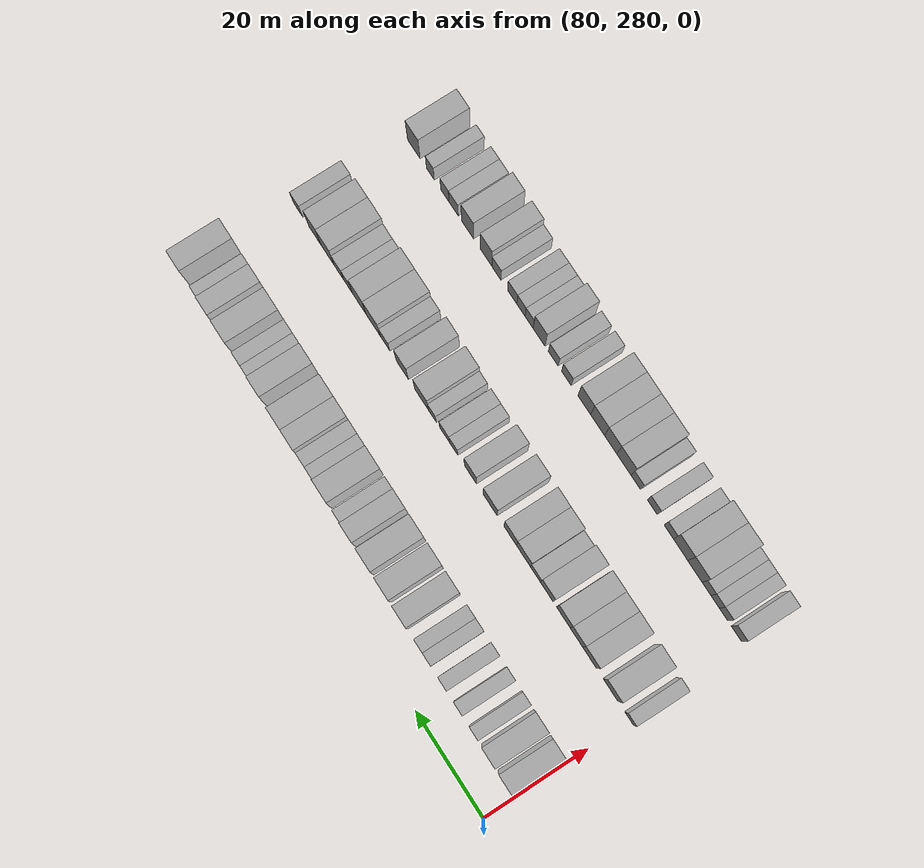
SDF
<sdf version="1.6">
 <world name="default">
  <model name="building_721">
   <static>1</static>
   <pose>91.0000 282.9249 0 0.000000 0.000000 0.000000</pose>
   <link name="link">
    <pose>0 0 4.50 0 0 0</pose>
    <collision name="collision"><geometry><box><size>10.0000 4.2821 9.0000</size></box></geometry></collision>
    <visual name="visual">
     <cast_shadows>0</cast_shadows>
     <geometry><box><size>10.0000 4.2821 9.0000</size></box></geometry>
     <material>
      <script>
       <uri>model://HANNAS_wall/materials/scripts</uri>
       <uri>model://HANNAS_wall/materials/textures</uri>
       <name>vrc/HANNAS_wall</name>
      </script>
     </material>
    </visual>
   </link>
  </model>
  <model name="building_722">
   <static>1</static>
   <pose>91.0000 287.9911 0 0.000000 0.000000 0.000000</pose>
   <link name="link">
    <pose>0 0 4.50 0 0 0</pose>
    <collision name="collision"><geometry><box><size>10.0000 3.8503 9.0000</size></box></geometry></collision>
    <visual name="visual">
     <cast_shadows>0</cast_shadows>
     <geometry><box><size>10.0000 3.8503 9.0000</size></box></geometry>
     <material>
      <script>
       <uri>model://HANNAS_wall/materials/scripts</uri>
       <uri>model://HANNAS_wall/materials/textures</uri>
       <name>vrc/HANNAS_wall</name>
      </script>
     </material>
    </visual>
   </link>
  </model>
  <model name="building_723">
   <static>1</static>
   <pose>91.0000 292.1779 0 0.000000 0.000000 0.000000</pose>
   <link name="link">
    <pose>0 0 3.00 0 0 0</pose>
    <collision name="collision"><geometry><box><size>10.0000 2.5231 6.0000</size></box></geometry></collision>
    <visual name="visual">
     <cast_shadows>0</cast_shadows>
     <geometry><box><size>10.0000 2.5231 6.0000</size></box></geometry>
     <material>
      <script>
       <uri>model://HANNAS_wall/materials/scripts</uri>
       <uri>model://HANNAS_wall/materials/textures</uri>
       <name>vrc/HANNAS_wall</name>
      </script>
     </material>
    </visual>
   </link>
  </model>
  <model name="building_724">
   <static>1</static>
   <pose>91.0000 296.7178 0 0.000000 0.000000 0.000000</pose>
   <link name="link">
    <pose>0 0 3.00 0 0 0</pose>
    <collision name="collision"><geometry><box><size>10.0000 2.5567 6.0000</size></box></geometry></collision>
    <visual name="visual">
     <cast_shadows>0</cast_shadows>
     <geometry><box><size>10.0000 2.5567 6.0000</size></box></geometry>
     <material>
      <script>
       <uri>model://HANNAS_wall/materials/scripts</uri>
       <uri>model://HANNAS_wall/materials/textures</uri>
       <name>vrc/HANNAS_wall</name>
      </script>
     </material>
    </visual>
   </link>
  </model>
  <model name="building_725">
   <static>1</static>
   <pose>91.0000 301.2872 0 0.000000 0.000000 0.000000</pose>
   <link name="link">
    <pose>0 0 3.00 0 0 0</pose>
    <collision name="collision"><geometry><box><size>10.0000 2.5821 6.0000</size></box></geometry></collision>
    <visual name="visual">
     <cast_shadows>0</cast_shadows>
     <geometry><box><size>10.0000 2.5821 6.0000</size></box></geometry>
     <material>
      <script>
       <uri>model://HANNAS_wall/materials/scripts</uri>
       <uri>model://HANNAS_wall/materials/textures</uri>
       <name>vrc/HANNAS_wall</name>
      </script>
     </material>
    </visual>
   </link>
  </model>
  <model name="building_726">
   <static>1</static>
   <pose>91.0000 305.8142 0 0.000000 0.000000 0.000000</pose>
   <link name="link">
    <pose>0 0 3.00 0 0 0</pose>
    <collision name="collision"><geometry><box><size>10.0000 2.4719 6.0000</size></box></geometry></collision>
    <visual name="visual">
     <cast_shadows>0</cast_shadows>
     <geometry><box><size>10.0000 2.4719 6.0000</size></box></geometry>
     <material>
      <script>
       <uri>model://HANNAS_wall/materials/scripts</uri>
       <uri>model://HANNAS_wall/materials/textures</uri>
       <name>vrc/HANNAS_wall</name>
      </script>
     </material>
    </visual>
   </link>
  </model>
  <model name="building_727">
   <static>1</static>
   <pose>91.0000 308.3226 0 0.000000 0.000000 0.000000</pose>
   <link name="link">
    <pose>0 0 3.00 0 0 0</pose>
    <collision name="collision"><geometry><box><size>10.0000 2.5449 6.0000</size></box></geometry></collision>
    <visual name="visual">
     <cast_shadows>0</cast_shadows>
     <geometry><box><size>10.0000 2.5449 6.0000</size></box></geometry>
     <material>
      <script>
       <uri>model://HANNAS_wall/materials/scripts</uri>
       <uri>model://HANNAS_wall/materials/textures</uri>
       <name>vrc/HANNAS_wall</name>
      </script>
     </material>
    </visual>
   </link>
  </model>
  <model name="building_728">
   <static>1</static>
   <pose>91.0000 313.6420 0 0.000000 0.000000 0.000000</pose>
   <link name="link">
    <pose>0 0 4.50 0 0 0</pose>
    <collision name="collision"><geometry><box><size>10.0000 4.0939 9.0000</size></box></geometry></collision>
    <visual name="visual">
     <cast_shadows>0</cast_shadows>
     <geometry><box><size>10.0000 4.0939 9.0000</size></box></geometry>
     <material>
      <script>
       <uri>model://HANNAS_wall/materials/scripts</uri>
       <uri>model://HANNAS_wall/materials/textures</uri>
       <name>vrc/HANNAS_wall</name>
      </script>
     </material>
    </visual>
   </link>
  </model>
  <model name="building_729">
   <static>1</static>
   <pose>91.0000 318.8172 0 0.000000 0.000000 0.000000</pose>
   <link name="link">
    <pose>0 0 4.50 0 0 0</pose>
    <collision name="collision"><geometry><box><size>10.0000 4.2566 9.0000</size></box></geometry></collision>
    <visual name="visual">
     <cast_shadows>0</cast_shadows>
     <geometry><box><size>10.0000 4.2566 9.0000</size></box></geometry>
     <material>
      <script>
       <uri>model://HANNAS_wall/materials/scripts</uri>
       <uri>model://HANNAS_wall/materials/textures</uri>
       <name>vrc/HANNAS_wall</name>
      </script>
     </material>
    </visual>
   </link>
  </model>
  <model name="building_730">
   <static>1</static>
   <pose>91.0000 324.1580 0 0.000000 0.000000 0.000000</pose>
   <link name="link">
    <pose>0 0 4.50 0 0 0</pose>
    <collision name="collision"><geometry><box><size>10.0000 4.4248 9.0000</size></box></geometry></collision>
    <visual name="visual">
     <cast_shadows>0</cast_shadows>
     <geometry><box><size>10.0000 4.4248 9.0000</size></box></geometry>
     <material>
      <script>
       <uri>model://HANNAS_wall/materials/scripts</uri>
       <uri>model://HANNAS_wall/materials/textures</uri>
       <name>vrc/HANNAS_wall</name>
      </script>
     </material>
    </visual>
   </link>
  </model>
  <model name="building_731">
   <static>1</static>
   <pose>91.0000 329.2375 0 0.000000 0.000000 0.000000</pose>
   <link name="link">
    <pose>0 0 4.50 0 0 0</pose>
    <collision name="collision"><geometry><box><size>10.0000 3.7342 9.0000</size></box></geometry></collision>
    <visual name="visual">
     <cast_shadows>0</cast_shadows>
     <geometry><box><size>10.0000 3.7342 9.0000</size></box></geometry>
     <material>
      <script>
       <uri>model://HANNAS_wall/materials/scripts</uri>
       <uri>model://HANNAS_wall/materials/textures</uri>
       <name>vrc/HANNAS_wall</name>
      </script>
     </material>
    </visual>
   </link>
  </model>
  <model name="building_732">
   <static>1</static>
   <pose>91.0000 332.4694 0 0.000000 0.000000 0.000000</pose>
   <link name="link">
    <pose>0 0 3.00 0 0 0</pose>
    <collision name="collision"><geometry><box><size>10.0000 2.7295 6.0000</size></box></geometry></collision>
    <visual name="visual">
     <cast_shadows>0</cast_shadows>
     <geometry><box><size>10.0000 2.7295 6.0000</size></box></geometry>
     <material>
      <script>
       <uri>model://HANNAS_wall/materials/scripts</uri>
       <uri>model://HANNAS_wall/materials/textures</uri>
       <name>vrc/HANNAS_wall</name>
      </script>
     </material>
    </visual>
   </link>
  </model>
  <model name="building_733">
   <static>1</static>
   <pose>91.0000 337.0437 0 0.000000 0.000000 0.000000</pose>
   <link name="link">
    <pose>0 0 4.50 0 0 0</pose>
    <collision name="collision"><geometry><box><size>10.0000 4.4191 9.0000</size></box></geometry></collision>
    <visual name="visual">
     <cast_shadows>0</cast_shadows>
     <geometry><box><size>10.0000 4.4191 9.0000</size></box></geometry>
     <material>
      <script>
       <uri>model://HANNAS_wall/materials/scripts</uri>
       <uri>model://HANNAS_wall/materials/textures</uri>
       <name>vrc/HANNAS_wall</name>
      </script>
     </material>
    </visual>
   </link>
  </model>
  <model name="building_734">
   <static>1</static>
   <pose>91.0000 340.6463 0 0.000000 0.000000 0.000000</pose>
   <link name="link">
    <pose>0 0 3.00 0 0 0</pose>
    <collision name="collision"><geometry><box><size>10.0000 2.7863 6.0000</size></box></geometry></collision>
    <visual name="visual">
     <cast_shadows>0</cast_shadows>
     <geometry><box><size>10.0000 2.7863 6.0000</size></box></geometry>
     <material>
      <script>
       <uri>model://HANNAS_wall/materials/scripts</uri>
       <uri>model://HANNAS_wall/materials/textures</uri>
       <name>vrc/HANNAS_wall</name>
      </script>
     </material>
    </visual>
   </link>
  </model>
  <model name="building_735">
   <static>1</static>
   <pose>91.0000 343.3948 0 0.000000 0.000000 0.000000</pose>
   <link name="link">
    <pose>0 0 3.00 0 0 0</pose>
    <collision name="collision"><geometry><box><size>10.0000 2.7107 6.0000</size></box></geometry></collision>
    <visual name="visual">
     <cast_shadows>0</cast_shadows>
     <geometry><box><size>10.0000 2.7107 6.0000</size></box></geometry>
     <material>
      <script>
       <uri>model://HANNAS_wall/materials/scripts</uri>
       <uri>model://HANNAS_wall/materials/textures</uri>
       <name>vrc/HANNAS_wall</name>
      </script>
     </material>
    </visual>
   </link>
  </model>
  <model name="building_736">
   <static>1</static>
   <pose>91.0000 346.7022 0 0.000000 0.000000 0.000000</pose>
   <link name="link">
    <pose>0 0 4.50 0 0 0</pose>
    <collision name="collision"><geometry><box><size>10.0000 3.9039 9.0000</size></box></geometry></collision>
    <visual name="visual">
     <cast_shadows>0</cast_shadows>
     <geometry><box><size>10.0000 3.9039 9.0000</size></box></geometry>
     <material>
      <script>
       <uri>model://HANNAS_wall/materials/scripts</uri>
       <uri>model://HANNAS_wall/materials/textures</uri>
       <name>vrc/HANNAS_wall</name>
      </script>
     </material>
    </visual>
   </link>
  </model>
  <model name="building_737">
   <static>1</static>
   <pose>91.0000 350.7959 0 0.000000 0.000000 0.000000</pose>
   <link name="link">
    <pose>0 0 4.50 0 0 0</pose>
    <collision name="collision"><geometry><box><size>10.0000 4.2835 9.0000</size></box></geometry></collision>
    <visual name="visual">
     <cast_shadows>0</cast_shadows>
     <geometry><box><size>10.0000 4.2835 9.0000</size></box></geometry>
     <material>
      <script>
       <uri>model://HANNAS_wall/materials/scripts</uri>
       <uri>model://HANNAS_wall/materials/textures</uri>
       <name>vrc/HANNAS_wall</name>
      </script>
     </material>
    </visual>
   </link>
  </model>
  <model name="building_738">
   <static>1</static>
   <pose>91.0000 356.9133 0 0.000000 0.000000 0.000000</pose>
   <link name="link">
    <pose>0 0 4.50 0 0 0</pose>
    <collision name="collision"><geometry><box><size>10.0000 3.9514 9.0000</size></box></geometry></collision>
    <visual name="visual">
     <cast_shadows>0</cast_shadows>
     <geometry><box><size>10.0000 3.9514 9.0000</size></box></geometry>
     <material>
      <script>
       <uri>model://HANNAS_wall/materials/scripts</uri>
       <uri>model://HANNAS_wall/materials/textures</uri>
       <name>vrc/HANNAS_wall</name>
      </script>
     </material>
    </visual>
   </link>
  </model>
  <model name="building_739">
   <static>1</static>
   <pose>91.0000 360.2728 0 0.000000 0.000000 0.000000</pose>
   <link name="link">
    <pose>0 0 3.00 0 0 0</pose>
    <collision name="collision"><geometry><box><size>10.0000 2.7677 6.0000</size></box></geometry></collision>
    <visual name="visual">
     <cast_shadows>0</cast_shadows>
     <geometry><box><size>10.0000 2.7677 6.0000</size></box></geometry>
     <material>
      <script>
       <uri>model://HANNAS_wall/materials/scripts</uri>
       <uri>model://HANNAS_wall/materials/textures</uri>
       <name>vrc/HANNAS_wall</name>
      </script>
     </material>
    </visual>
   </link>
  </model>
  <model name="building_740">
   <static>1</static>
   <pose>91.0000 362.9914 0 0.000000 0.000000 0.000000</pose>
   <link name="link">
    <pose>0 0 3.00 0 0 0</pose>
    <collision name="collision"><geometry><box><size>10.0000 2.6695 6.0000</size></box></geometry></collision>
    <visual name="visual">
     <cast_shadows>0</cast_shadows>
     <geometry><box><size>10.0000 2.6695 6.0000</size></box></geometry>
     <material>
      <script>
       <uri>model://HANNAS_wall/materials/scripts</uri>
       <uri>model://HANNAS_wall/materials/textures</uri>
       <name>vrc/HANNAS_wall</name>
      </script>
     </material>
    </visual>
   </link>
  </model>
  <model name="building_741">
   <static>1</static>
   <pose>91.0000 367.5371 0 0.000000 0.000000 0.000000</pose>
   <link name="link">
    <pose>0 0 4.50 0 0 0</pose>
    <collision name="collision"><geometry><box><size>10.0000 4.4219 9.0000</size></box></geometry></collision>
    <visual name="visual">
     <cast_shadows>0</cast_shadows>
     <geometry><box><size>10.0000 4.4219 9.0000</size></box></geometry>
     <material>
      <script>
       <uri>model://HANNAS_wall/materials/scripts</uri>
       <uri>model://HANNAS_wall/materials/textures</uri>
       <name>vrc/HANNAS_wall</name>
      </script>
     </material>
    </visual>
   </link>
  </model>
  <model name="building_742">
   <static>1</static>
   <pose>91.0000 372.5519 0 0.000000 0.000000 0.000000</pose>
   <link name="link">
    <pose>0 0 4.50 0 0 0</pose>
    <collision name="collision"><geometry><box><size>10.0000 3.6077 9.0000</size></box></geometry></collision>
    <visual name="visual">
     <cast_shadows>0</cast_shadows>
     <geometry><box><size>10.0000 3.6077 9.0000</size></box></geometry>
     <material>
      <script>
       <uri>model://HANNAS_wall/materials/scripts</uri>
       <uri>model://HANNAS_wall/materials/textures</uri>
       <name>vrc/HANNAS_wall</name>
      </script>
     </material>
    </visual>
   </link>
  </model>
  <model name="building_743">
   <static>1</static>
   <pose>91.0000 375.8541 0 0.000000 0.000000 0.000000</pose>
   <link name="link">
    <pose>0 0 3.00 0 0 0</pose>
    <collision name="collision"><geometry><box><size>10.0000 2.9969 6.0000</size></box></geometry></collision>
    <visual name="visual">
     <cast_shadows>0</cast_shadows>
     <geometry><box><size>10.0000 2.9969 6.0000</size></box></geometry>
     <material>
      <script>
       <uri>model://HANNAS_wall/materials/scripts</uri>
       <uri>model://HANNAS_wall/materials/textures</uri>
       <name>vrc/HANNAS_wall</name>
      </script>
     </material>
    </visual>
   </link>
  </model>
  <model name="building_744">
   <static>1</static>
   <pose>91.0000 381.3688 0 0.000000 0.000000 0.000000</pose>
   <link name="link">
    <pose>0 0 4.50 0 0 0</pose>
    <collision name="collision"><geometry><box><size>10.0000 4.0326 9.0000</size></box></geometry></collision>
    <visual name="visual">
     <cast_shadows>0</cast_shadows>
     <geometry><box><size>10.0000 4.0326 9.0000</size></box></geometry>
     <material>
      <script>
       <uri>model://HANNAS_wall/materials/scripts</uri>
       <uri>model://HANNAS_wall/materials/textures</uri>
       <name>vrc/HANNAS_wall</name>
      </script>
     </material>
    </visual>
   </link>
  </model>
  <model name="building_906">
   <static>1</static>
   <pose>113.0000 280.4927 0 0.000000 0.000000 0.000000</pose>
   <link name="link">
    <pose>0 0 3.00 0 0 0</pose>
    <collision name="collision"><geometry><box><size>10.0000 2.4634 6.0000</size></box></geometry></collision>
    <visual name="visual">
     <cast_shadows>0</cast_shadows>
     <geometry><box><size>10.0000 2.4634 6.0000</size></box></geometry>
     <material>
      <script>
       <uri>model://HANNAS_wall/materials/scripts</uri>
       <uri>model://HANNAS_wall/materials/textures</uri>
       <name>vrc/HANNAS_wall</name>
      </script>
     </material>
    </visual>
   </link>
  </model>
  <model name="building_907">
   <static>1</static>
   <pose>113.0000 285.8467 0 0.000000 0.000000 0.000000</pose>
   <link name="link">
    <pose>0 0 4.50 0 0 0</pose>
    <collision name="collision"><geometry><box><size>10.0000 4.2445 9.0000</size></box></geometry></collision>
    <visual name="visual">
     <cast_shadows>0</cast_shadows>
     <geometry><box><size>10.0000 4.2445 9.0000</size></box></geometry>
     <material>
      <script>
       <uri>model://HANNAS_wall/materials/scripts</uri>
       <uri>model://HANNAS_wall/materials/textures</uri>
       <name>vrc/HANNAS_wall</name>
      </script>
     </material>
    </visual>
   </link>
  </model>
  <model name="building_908">
   <static>1</static>
   <pose>113.0000 291.9885 0 0.000000 0.000000 0.000000</pose>
   <link name="link">
    <pose>0 0 4.50 0 0 0</pose>
    <collision name="collision"><geometry><box><size>10.0000 4.0390 9.0000</size></box></geometry></collision>
    <visual name="visual">
     <cast_shadows>0</cast_shadows>
     <geometry><box><size>10.0000 4.0390 9.0000</size></box></geometry>
     <material>
      <script>
       <uri>model://HANNAS_wall/materials/scripts</uri>
       <uri>model://HANNAS_wall/materials/textures</uri>
       <name>vrc/HANNAS_wall</name>
      </script>
     </material>
    </visual>
   </link>
  </model>
  <model name="building_909">
   <static>1</static>
   <pose>113.0000 295.8338 0 0.000000 0.000000 0.000000</pose>
   <link name="link">
    <pose>0 0 4.50 0 0 0</pose>
    <collision name="collision"><geometry><box><size>10.0000 3.6516 9.0000</size></box></geometry></collision>
    <visual name="visual">
     <cast_shadows>0</cast_shadows>
     <geometry><box><size>10.0000 3.6516 9.0000</size></box></geometry>
     <material>
      <script>
       <uri>model://HANNAS_wall/materials/scripts</uri>
       <uri>model://HANNAS_wall/materials/textures</uri>
       <name>vrc/HANNAS_wall</name>
      </script>
     </material>
    </visual>
   </link>
  </model>
  <model name="building_910">
   <static>1</static>
   <pose>113.0000 299.6271 0 0.000000 0.000000 0.000000</pose>
   <link name="link">
    <pose>0 0 4.50 0 0 0</pose>
    <collision name="collision"><geometry><box><size>10.0000 3.9351 9.0000</size></box></geometry></collision>
    <visual name="visual">
     <cast_shadows>0</cast_shadows>
     <geometry><box><size>10.0000 3.9351 9.0000</size></box></geometry>
     <material>
      <script>
       <uri>model://HANNAS_wall/materials/scripts</uri>
       <uri>model://HANNAS_wall/materials/textures</uri>
       <name>vrc/HANNAS_wall</name>
      </script>
     </material>
    </visual>
   </link>
  </model>
  <model name="building_911">
   <static>1</static>
   <pose>113.0000 304.4656 0 0.000000 0.000000 0.000000</pose>
   <link name="link">
    <pose>0 0 4.50 0 0 0</pose>
    <collision name="collision"><geometry><box><size>10.0000 3.7419 9.0000</size></box></geometry></collision>
    <visual name="visual">
     <cast_shadows>0</cast_shadows>
     <geometry><box><size>10.0000 3.7419 9.0000</size></box></geometry>
     <material>
      <script>
       <uri>model://HANNAS_wall/materials/scripts</uri>
       <uri>model://HANNAS_wall/materials/textures</uri>
       <name>vrc/HANNAS_wall</name>
      </script>
     </material>
    </visual>
   </link>
  </model>
  <model name="building_912">
   <static>1</static>
   <pose>113.0000 307.8141 0 0.000000 0.000000 0.000000</pose>
   <link name="link">
    <pose>0 0 3.00 0 0 0</pose>
    <collision name="collision"><geometry><box><size>10.0000 2.9552 6.0000</size></box></geometry></collision>
    <visual name="visual">
     <cast_shadows>0</cast_shadows>
     <geometry><box><size>10.0000 2.9552 6.0000</size></box></geometry>
     <material>
      <script>
       <uri>model://HANNAS_wall/materials/scripts</uri>
       <uri>model://HANNAS_wall/materials/textures</uri>
       <name>vrc/HANNAS_wall</name>
      </script>
     </material>
    </visual>
   </link>
  </model>
  <model name="building_913">
   <static>1</static>
   <pose>113.0000 311.3528 0 0.000000 0.000000 0.000000</pose>
   <link name="link">
    <pose>0 0 4.50 0 0 0</pose>
    <collision name="collision"><geometry><box><size>10.0000 4.1222 9.0000</size></box></geometry></collision>
    <visual name="visual">
     <cast_shadows>0</cast_shadows>
     <geometry><box><size>10.0000 4.1222 9.0000</size></box></geometry>
     <material>
      <script>
       <uri>model://HANNAS_wall/materials/scripts</uri>
       <uri>model://HANNAS_wall/materials/textures</uri>
       <name>vrc/HANNAS_wall</name>
      </script>
     </material>
    </visual>
   </link>
  </model>
  <model name="building_914">
   <static>1</static>
   <pose>113.0000 315.2911 0 0.000000 0.000000 0.000000</pose>
   <link name="link">
    <pose>0 0 4.50 0 0 0</pose>
    <collision name="collision"><geometry><box><size>10.0000 3.7542 9.0000</size></box></geometry></collision>
    <visual name="visual">
     <cast_shadows>0</cast_shadows>
     <geometry><box><size>10.0000 3.7542 9.0000</size></box></geometry>
     <material>
      <script>
       <uri>model://HANNAS_wall/materials/scripts</uri>
       <uri>model://HANNAS_wall/materials/textures</uri>
       <name>vrc/HANNAS_wall</name>
      </script>
     </material>
    </visual>
   </link>
  </model>
  <model name="building_915">
   <static>1</static>
   <pose>113.0000 321.2756 0 0.000000 0.000000 0.000000</pose>
   <link name="link">
    <pose>0 0 4.50 0 0 0</pose>
    <collision name="collision"><geometry><box><size>10.0000 4.2148 9.0000</size></box></geometry></collision>
    <visual name="visual">
     <cast_shadows>0</cast_shadows>
     <geometry><box><size>10.0000 4.2148 9.0000</size></box></geometry>
     <material>
      <script>
       <uri>model://HANNAS_wall/materials/scripts</uri>
       <uri>model://HANNAS_wall/materials/textures</uri>
       <name>vrc/HANNAS_wall</name>
      </script>
     </material>
    </visual>
   </link>
  </model>
  <model name="building_916">
   <static>1</static>
   <pose>113.0000 327.1985 0 0.000000 0.000000 0.000000</pose>
   <link name="link">
    <pose>0 0 4.50 0 0 0</pose>
    <collision name="collision"><geometry><box><size>10.0000 3.6310 9.0000</size></box></geometry></collision>
    <visual name="visual">
     <cast_shadows>0</cast_shadows>
     <geometry><box><size>10.0000 3.6310 9.0000</size></box></geometry>
     <material>
      <script>
       <uri>model://HANNAS_wall/materials/scripts</uri>
       <uri>model://HANNAS_wall/materials/textures</uri>
       <name>vrc/HANNAS_wall</name>
      </script>
     </material>
    </visual>
   </link>
  </model>
  <model name="building_917">
   <static>1</static>
   <pose>113.0000 332.2927 0 0.000000 0.000000 0.000000</pose>
   <link name="link">
    <pose>0 0 3.00 0 0 0</pose>
    <collision name="collision"><geometry><box><size>10.0000 2.5574 6.0000</size></box></geometry></collision>
    <visual name="visual">
     <cast_shadows>0</cast_shadows>
     <geometry><box><size>10.0000 2.5574 6.0000</size></box></geometry>
     <material>
      <script>
       <uri>model://HANNAS_wall/materials/scripts</uri>
       <uri>model://HANNAS_wall/materials/textures</uri>
       <name>vrc/HANNAS_wall</name>
      </script>
     </material>
    </visual>
   </link>
  </model>
  <model name="building_918">
   <static>1</static>
   <pose>113.0000 335.0383 0 0.000000 0.000000 0.000000</pose>
   <link name="link">
    <pose>0 0 3.00 0 0 0</pose>
    <collision name="collision"><geometry><box><size>10.0000 2.9337 6.0000</size></box></geometry></collision>
    <visual name="visual">
     <cast_shadows>0</cast_shadows>
     <geometry><box><size>10.0000 2.9337 6.0000</size></box></geometry>
     <material>
      <script>
       <uri>model://HANNAS_wall/materials/scripts</uri>
       <uri>model://HANNAS_wall/materials/textures</uri>
       <name>vrc/HANNAS_wall</name>
      </script>
     </material>
    </visual>
   </link>
  </model>
  <model name="building_919">
   <static>1</static>
   <pose>113.0000 338.7102 0 0.000000 0.000000 0.000000</pose>
   <link name="link">
    <pose>0 0 3.00 0 0 0</pose>
    <collision name="collision"><geometry><box><size>10.0000 2.4101 6.0000</size></box></geometry></collision>
    <visual name="visual">
     <cast_shadows>0</cast_shadows>
     <geometry><box><size>10.0000 2.4101 6.0000</size></box></geometry>
     <material>
      <script>
       <uri>model://HANNAS_wall/materials/scripts</uri>
       <uri>model://HANNAS_wall/materials/textures</uri>
       <name>vrc/HANNAS_wall</name>
      </script>
     </material>
    </visual>
   </link>
  </model>
  <model name="building_920">
   <static>1</static>
   <pose>113.0000 341.9843 0 0.000000 0.000000 0.000000</pose>
   <link name="link">
    <pose>0 0 4.50 0 0 0</pose>
    <collision name="collision"><geometry><box><size>10.0000 4.1382 9.0000</size></box></geometry></collision>
    <visual name="visual">
     <cast_shadows>0</cast_shadows>
     <geometry><box><size>10.0000 4.1382 9.0000</size></box></geometry>
     <material>
      <script>
       <uri>model://HANNAS_wall/materials/scripts</uri>
       <uri>model://HANNAS_wall/materials/textures</uri>
       <name>vrc/HANNAS_wall</name>
      </script>
     </material>
    </visual>
   </link>
  </model>
  <model name="building_921">
   <static>1</static>
   <pose>113.0000 347.8996 0 0.000000 0.000000 0.000000</pose>
   <link name="link">
    <pose>0 0 4.50 0 0 0</pose>
    <collision name="collision"><geometry><box><size>10.0000 3.6924 9.0000</size></box></geometry></collision>
    <visual name="visual">
     <cast_shadows>0</cast_shadows>
     <geometry><box><size>10.0000 3.6924 9.0000</size></box></geometry>
     <material>
      <script>
       <uri>model://HANNAS_wall/materials/scripts</uri>
       <uri>model://HANNAS_wall/materials/textures</uri>
       <name>vrc/HANNAS_wall</name>
      </script>
     </material>
    </visual>
   </link>
  </model>
  <model name="building_922">
   <static>1</static>
   <pose>113.0000 353.1746 0 0.000000 0.000000 0.000000</pose>
   <link name="link">
    <pose>0 0 3.00 0 0 0</pose>
    <collision name="collision"><geometry><box><size>10.0000 2.8577 6.0000</size></box></geometry></collision>
    <visual name="visual">
     <cast_shadows>0</cast_shadows>
     <geometry><box><size>10.0000 2.8577 6.0000</size></box></geometry>
     <material>
      <script>
       <uri>model://HANNAS_wall/materials/scripts</uri>
       <uri>model://HANNAS_wall/materials/textures</uri>
       <name>vrc/HANNAS_wall</name>
      </script>
     </material>
    </visual>
   </link>
  </model>
  <model name="building_923">
   <static>1</static>
   <pose>113.0000 356.8511 0 0.000000 0.000000 0.000000</pose>
   <link name="link">
    <pose>0 0 4.50 0 0 0</pose>
    <collision name="collision"><geometry><box><size>10.0000 4.4952 9.0000</size></box></geometry></collision>
    <visual name="visual">
     <cast_shadows>0</cast_shadows>
     <geometry><box><size>10.0000 4.4952 9.0000</size></box></geometry>
     <material>
      <script>
       <uri>model://HANNAS_wall/materials/scripts</uri>
       <uri>model://HANNAS_wall/materials/textures</uri>
       <name>vrc/HANNAS_wall</name>
      </script>
     </material>
    </visual>
   </link>
  </model>
  <model name="building_924">
   <static>1</static>
   <pose>113.0000 361.2225 0 0.000000 0.000000 0.000000</pose>
   <link name="link">
    <pose>0 0 4.50 0 0 0</pose>
    <collision name="collision"><geometry><box><size>10.0000 4.2476 9.0000</size></box></geometry></collision>
    <visual name="visual">
     <cast_shadows>0</cast_shadows>
     <geometry><box><size>10.0000 4.2476 9.0000</size></box></geometry>
     <material>
      <script>
       <uri>model://HANNAS_wall/materials/scripts</uri>
       <uri>model://HANNAS_wall/materials/textures</uri>
       <name>vrc/HANNAS_wall</name>
      </script>
     </material>
    </visual>
   </link>
  </model>
  <model name="building_925">
   <static>1</static>
   <pose>113.0000 364.7083 0 0.000000 0.000000 0.000000</pose>
   <link name="link">
    <pose>0 0 3.00 0 0 0</pose>
    <collision name="collision"><geometry><box><size>10.0000 2.7241 6.0000</size></box></geometry></collision>
    <visual name="visual">
     <cast_shadows>0</cast_shadows>
     <geometry><box><size>10.0000 2.7241 6.0000</size></box></geometry>
     <material>
      <script>
       <uri>model://HANNAS_wall/materials/scripts</uri>
       <uri>model://HANNAS_wall/materials/textures</uri>
       <name>vrc/HANNAS_wall</name>
      </script>
     </material>
    </visual>
   </link>
  </model>
  <model name="building_926">
   <static>1</static>
   <pose>113.0000 367.5683 0 0.000000 0.000000 0.000000</pose>
   <link name="link">
    <pose>0 0 3.00 0 0 0</pose>
    <collision name="collision"><geometry><box><size>10.0000 2.9958 6.0000</size></box></geometry></collision>
    <visual name="visual">
     <cast_shadows>0</cast_shadows>
     <geometry><box><size>10.0000 2.9958 6.0000</size></box></geometry>
     <material>
      <script>
       <uri>model://HANNAS_wall/materials/scripts</uri>
       <uri>model://HANNAS_wall/materials/textures</uri>
       <name>vrc/HANNAS_wall</name>
      </script>
     </material>
    </visual>
   </link>
  </model>
  <model name="building_927">
   <static>1</static>
   <pose>113.0000 371.1673 0 0.000000 0.000000 0.000000</pose>
   <link name="link">
    <pose>0 0 4.50 0 0 0</pose>
    <collision name="collision"><geometry><box><size>10.0000 4.2023 9.0000</size></box></geometry></collision>
    <visual name="visual">
     <cast_shadows>0</cast_shadows>
     <geometry><box><size>10.0000 4.2023 9.0000</size></box></geometry>
     <material>
      <script>
       <uri>model://HANNAS_wall/materials/scripts</uri>
       <uri>model://HANNAS_wall/materials/textures</uri>
       <name>vrc/HANNAS_wall</name>
      </script>
     </material>
    </visual>
   </link>
  </model>
  <model name="building_928">
   <static>1</static>
   <pose>113.0000 375.1350 0 0.000000 0.000000 0.000000</pose>
   <link name="link">
    <pose>0 0 4.50 0 0 0</pose>
    <collision name="collision"><geometry><box><size>10.0000 3.7329 9.0000</size></box></geometry></collision>
    <visual name="visual">
     <cast_shadows>0</cast_shadows>
     <geometry><box><size>10.0000 3.7329 9.0000</size></box></geometry>
     <material>
      <script>
       <uri>model://HANNAS_wall/materials/scripts</uri>
       <uri>model://HANNAS_wall/materials/textures</uri>
       <name>vrc/HANNAS_wall</name>
      </script>
     </material>
    </visual>
   </link>
  </model>
  <model name="building_929">
   <static>1</static>
   <pose>113.0000 380.4245 0 0.000000 0.000000 0.000000</pose>
   <link name="link">
    <pose>0 0 3.00 0 0 0</pose>
    <collision name="collision"><geometry><box><size>10.0000 2.8461 6.0000</size></box></geometry></collision>
    <visual name="visual">
     <cast_shadows>0</cast_shadows>
     <geometry><box><size>10.0000 2.8461 6.0000</size></box></geometry>
     <material>
      <script>
       <uri>model://HANNAS_wall/materials/scripts</uri>
       <uri>model://HANNAS_wall/materials/textures</uri>
       <name>vrc/HANNAS_wall</name>
      </script>
     </material>
    </visual>
   </link>
  </model>
  <model name="building_1092">
   <static>1</static>
   <pose>135.0000 282.2192 0 0.000000 0.000000 0.000000</pose>
   <link name="link">
    <pose>0 0 3.00 0 0 0</pose>
    <collision name="collision"><geometry><box><size>10.0000 2.9619 6.0000</size></box></geometry></collision>
    <visual name="visual">
     <cast_shadows>0</cast_shadows>
     <geometry><box><size>10.0000 2.9619 6.0000</size></box></geometry>
     <material>
      <script>
       <uri>model://HANNAS_wall/materials/scripts</uri>
       <uri>model://HANNAS_wall/materials/textures</uri>
       <name>vrc/HANNAS_wall</name>
      </script>
     </material>
    </visual>
   </link>
  </model>
  <model name="building_1093">
   <static>1</static>
   <pose>135.0000 285.9088 0 0.000000 0.000000 0.000000</pose>
   <link name="link">
    <pose>0 0 3.00 0 0 0</pose>
    <collision name="collision"><geometry><box><size>10.0000 2.4173 6.0000</size></box></geometry></collision>
    <visual name="visual">
     <cast_shadows>0</cast_shadows>
     <geometry><box><size>10.0000 2.4173 6.0000</size></box></geometry>
     <material>
      <script>
       <uri>model://HANNAS_wall/materials/scripts</uri>
       <uri>model://HANNAS_wall/materials/textures</uri>
       <name>vrc/HANNAS_wall</name>
      </script>
     </material>
    </visual>
   </link>
  </model>
  <model name="building_1094">
   <static>1</static>
   <pose>135.0000 288.3415 0 0.000000 0.000000 0.000000</pose>
   <link name="link">
    <pose>0 0 3.00 0 0 0</pose>
    <collision name="collision"><geometry><box><size>10.0000 2.4482 6.0000</size></box></geometry></collision>
    <visual name="visual">
     <cast_shadows>0</cast_shadows>
     <geometry><box><size>10.0000 2.4482 6.0000</size></box></geometry>
     <material>
      <script>
       <uri>model://HANNAS_wall/materials/scripts</uri>
       <uri>model://HANNAS_wall/materials/textures</uri>
       <name>vrc/HANNAS_wall</name>
      </script>
     </material>
    </visual>
   </link>
  </model>
  <model name="building_1095">
   <static>1</static>
   <pose>135.0000 290.8354 0 0.000000 0.000000 0.000000</pose>
   <link name="link">
    <pose>0 0 3.00 0 0 0</pose>
    <collision name="collision"><geometry><box><size>10.0000 2.5396 6.0000</size></box></geometry></collision>
    <visual name="visual">
     <cast_shadows>0</cast_shadows>
     <geometry><box><size>10.0000 2.5396 6.0000</size></box></geometry>
     <material>
      <script>
       <uri>model://HANNAS_wall/materials/scripts</uri>
       <uri>model://HANNAS_wall/materials/textures</uri>
       <name>vrc/HANNAS_wall</name>
      </script>
     </material>
    </visual>
   </link>
  </model>
  <model name="building_1096">
   <static>1</static>
   <pose>135.0000 294.1848 0 0.000000 0.000000 0.000000</pose>
   <link name="link">
    <pose>0 0 4.50 0 0 0</pose>
    <collision name="collision"><geometry><box><size>10.0000 4.1592 9.0000</size></box></geometry></collision>
    <visual name="visual">
     <cast_shadows>0</cast_shadows>
     <geometry><box><size>10.0000 4.1592 9.0000</size></box></geometry>
     <material>
      <script>
       <uri>model://HANNAS_wall/materials/scripts</uri>
       <uri>model://HANNAS_wall/materials/textures</uri>
       <name>vrc/HANNAS_wall</name>
      </script>
     </material>
    </visual>
   </link>
  </model>
  <model name="building_1097">
   <static>1</static>
   <pose>135.0000 298.3585 0 0.000000 0.000000 0.000000</pose>
   <link name="link">
    <pose>0 0 4.50 0 0 0</pose>
    <collision name="collision"><geometry><box><size>10.0000 4.1882 9.0000</size></box></geometry></collision>
    <visual name="visual">
     <cast_shadows>0</cast_shadows>
     <geometry><box><size>10.0000 4.1882 9.0000</size></box></geometry>
     <material>
      <script>
       <uri>model://HANNAS_wall/materials/scripts</uri>
       <uri>model://HANNAS_wall/materials/textures</uri>
       <name>vrc/HANNAS_wall</name>
      </script>
     </material>
    </visual>
   </link>
  </model>
  <model name="building_1098">
   <static>1</static>
   <pose>135.0000 301.8078 0 0.000000 0.000000 0.000000</pose>
   <link name="link">
    <pose>0 0 3.00 0 0 0</pose>
    <collision name="collision"><geometry><box><size>10.0000 2.7104 6.0000</size></box></geometry></collision>
    <visual name="visual">
     <cast_shadows>0</cast_shadows>
     <geometry><box><size>10.0000 2.7104 6.0000</size></box></geometry>
     <material>
      <script>
       <uri>model://HANNAS_wall/materials/scripts</uri>
       <uri>model://HANNAS_wall/materials/textures</uri>
       <name>vrc/HANNAS_wall</name>
      </script>
     </material>
    </visual>
   </link>
  </model>
  <model name="building_1099">
   <static>1</static>
   <pose>135.0000 306.6044 0 0.000000 0.000000 0.000000</pose>
   <link name="link">
    <pose>0 0 3.00 0 0 0</pose>
    <collision name="collision"><geometry><box><size>10.0000 2.8828 6.0000</size></box></geometry></collision>
    <visual name="visual">
     <cast_shadows>0</cast_shadows>
     <geometry><box><size>10.0000 2.8828 6.0000</size></box></geometry>
     <material>
      <script>
       <uri>model://HANNAS_wall/materials/scripts</uri>
       <uri>model://HANNAS_wall/materials/textures</uri>
       <name>vrc/HANNAS_wall</name>
      </script>
     </material>
    </visual>
   </link>
  </model>
  <model name="building_1100">
   <static>1</static>
   <pose>135.0000 311.4202 0 0.000000 0.000000 0.000000</pose>
   <link name="link">
    <pose>0 0 3.00 0 0 0</pose>
    <collision name="collision"><geometry><box><size>10.0000 2.7487 6.0000</size></box></geometry></collision>
    <visual name="visual">
     <cast_shadows>0</cast_shadows>
     <geometry><box><size>10.0000 2.7487 6.0000</size></box></geometry>
     <material>
      <script>
       <uri>model://HANNAS_wall/materials/scripts</uri>
       <uri>model://HANNAS_wall/materials/textures</uri>
       <name>vrc/HANNAS_wall</name>
      </script>
     </material>
    </visual>
   </link>
  </model>
  <model name="building_1101">
   <static>1</static>
   <pose>135.0000 314.9206 0 0.000000 0.000000 0.000000</pose>
   <link name="link">
    <pose>0 0 4.50 0 0 0</pose>
    <collision name="collision"><geometry><box><size>10.0000 4.2522 9.0000</size></box></geometry></collision>
    <visual name="visual">
     <cast_shadows>0</cast_shadows>
     <geometry><box><size>10.0000 4.2522 9.0000</size></box></geometry>
     <material>
      <script>
       <uri>model://HANNAS_wall/materials/scripts</uri>
       <uri>model://HANNAS_wall/materials/textures</uri>
       <name>vrc/HANNAS_wall</name>
      </script>
     </material>
    </visual>
   </link>
  </model>
  <model name="building_1102">
   <static>1</static>
   <pose>135.0000 318.8510 0 0.000000 0.000000 0.000000</pose>
   <link name="link">
    <pose>0 0 4.50 0 0 0</pose>
    <collision name="collision"><geometry><box><size>10.0000 3.6086 9.0000</size></box></geometry></collision>
    <visual name="visual">
     <cast_shadows>0</cast_shadows>
     <geometry><box><size>10.0000 3.6086 9.0000</size></box></geometry>
     <material>
      <script>
       <uri>model://HANNAS_wall/materials/scripts</uri>
       <uri>model://HANNAS_wall/materials/textures</uri>
       <name>vrc/HANNAS_wall</name>
      </script>
     </material>
    </visual>
   </link>
  </model>
  <model name="building_1103">
   <static>1</static>
   <pose>135.0000 322.7394 0 0.000000 0.000000 0.000000</pose>
   <link name="link">
    <pose>0 0 4.50 0 0 0</pose>
    <collision name="collision"><geometry><box><size>10.0000 4.1681 9.0000</size></box></geometry></collision>
    <visual name="visual">
     <cast_shadows>0</cast_shadows>
     <geometry><box><size>10.0000 4.1681 9.0000</size></box></geometry>
     <material>
      <script>
       <uri>model://HANNAS_wall/materials/scripts</uri>
       <uri>model://HANNAS_wall/materials/textures</uri>
       <name>vrc/HANNAS_wall</name>
      </script>
     </material>
    </visual>
   </link>
  </model>
  <model name="building_1104">
   <static>1</static>
   <pose>135.0000 326.7232 0 0.000000 0.000000 0.000000</pose>
   <link name="link">
    <pose>0 0 4.50 0 0 0</pose>
    <collision name="collision"><geometry><box><size>10.0000 3.7997 9.0000</size></box></geometry></collision>
    <visual name="visual">
     <cast_shadows>0</cast_shadows>
     <geometry><box><size>10.0000 3.7997 9.0000</size></box></geometry>
     <material>
      <script>
       <uri>model://HANNAS_wall/materials/scripts</uri>
       <uri>model://HANNAS_wall/materials/textures</uri>
       <name>vrc/HANNAS_wall</name>
      </script>
     </material>
    </visual>
   </link>
  </model>
  <model name="building_1105">
   <static>1</static>
   <pose>135.0000 332.0747 0 0.000000 0.000000 0.000000</pose>
   <link name="link">
    <pose>0 0 3.00 0 0 0</pose>
    <collision name="collision"><geometry><box><size>10.0000 2.9032 6.0000</size></box></geometry></collision>
    <visual name="visual">
     <cast_shadows>0</cast_shadows>
     <geometry><box><size>10.0000 2.9032 6.0000</size></box></geometry>
     <material>
      <script>
       <uri>model://HANNAS_wall/materials/scripts</uri>
       <uri>model://HANNAS_wall/materials/textures</uri>
       <name>vrc/HANNAS_wall</name>
      </script>
     </material>
    </visual>
   </link>
  </model>
  <model name="building_1106">
   <static>1</static>
   <pose>135.0000 336.0065 0 0.000000 0.000000 0.000000</pose>
   <link name="link">
    <pose>0 0 3.00 0 0 0</pose>
    <collision name="collision"><geometry><box><size>10.0000 2.9604 6.0000</size></box></geometry></collision>
    <visual name="visual">
     <cast_shadows>0</cast_shadows>
     <geometry><box><size>10.0000 2.9604 6.0000</size></box></geometry>
     <material>
      <script>
       <uri>model://HANNAS_wall/materials/scripts</uri>
       <uri>model://HANNAS_wall/materials/textures</uri>
       <name>vrc/HANNAS_wall</name>
      </script>
     </material>
    </visual>
   </link>
  </model>
  <model name="building_1107">
   <static>1</static>
   <pose>135.0000 340.2943 0 0.000000 0.000000 0.000000</pose>
   <link name="link">
    <pose>0 0 4.50 0 0 0</pose>
    <collision name="collision"><geometry><box><size>10.0000 3.6152 9.0000</size></box></geometry></collision>
    <visual name="visual">
     <cast_shadows>0</cast_shadows>
     <geometry><box><size>10.0000 3.6152 9.0000</size></box></geometry>
     <material>
      <script>
       <uri>model://HANNAS_wall/materials/scripts</uri>
       <uri>model://HANNAS_wall/materials/textures</uri>
       <name>vrc/HANNAS_wall</name>
      </script>
     </material>
    </visual>
   </link>
  </model>
  <model name="building_1108">
   <static>1</static>
   <pose>135.0000 343.3085 0 0.000000 0.000000 0.000000</pose>
   <link name="link">
    <pose>0 0 3.00 0 0 0</pose>
    <collision name="collision"><geometry><box><size>10.0000 2.4132 6.0000</size></box></geometry></collision>
    <visual name="visual">
     <cast_shadows>0</cast_shadows>
     <geometry><box><size>10.0000 2.4132 6.0000</size></box></geometry>
     <material>
      <script>
       <uri>model://HANNAS_wall/materials/scripts</uri>
       <uri>model://HANNAS_wall/materials/textures</uri>
       <name>vrc/HANNAS_wall</name>
      </script>
     </material>
    </visual>
   </link>
  </model>
  <model name="building_1109">
   <static>1</static>
   <pose>135.0000 345.7701 0 0.000000 0.000000 0.000000</pose>
   <link name="link">
    <pose>0 0 3.00 0 0 0</pose>
    <collision name="collision"><geometry><box><size>10.0000 2.5099 6.0000</size></box></geometry></collision>
    <visual name="visual">
     <cast_shadows>0</cast_shadows>
     <geometry><box><size>10.0000 2.5099 6.0000</size></box></geometry>
     <material>
      <script>
       <uri>model://HANNAS_wall/materials/scripts</uri>
       <uri>model://HANNAS_wall/materials/textures</uri>
       <name>vrc/HANNAS_wall</name>
      </script>
     </material>
    </visual>
   </link>
  </model>
  <model name="building_1110">
   <static>1</static>
   <pose>135.0000 348.4482 0 0.000000 0.000000 0.000000</pose>
   <link name="link">
    <pose>0 0 3.00 0 0 0</pose>
    <collision name="collision"><geometry><box><size>10.0000 2.8464 6.0000</size></box></geometry></collision>
    <visual name="visual">
     <cast_shadows>0</cast_shadows>
     <geometry><box><size>10.0000 2.8464 6.0000</size></box></geometry>
     <material>
      <script>
       <uri>model://HANNAS_wall/materials/scripts</uri>
       <uri>model://HANNAS_wall/materials/textures</uri>
       <name>vrc/HANNAS_wall</name>
      </script>
     </material>
    </visual>
   </link>
  </model>
  <model name="building_1111">
   <static>1</static>
   <pose>135.0000 353.2822 0 0.000000 0.000000 0.000000</pose>
   <link name="link">
    <pose>0 0 3.00 0 0 0</pose>
    <collision name="collision"><geometry><box><size>10.0000 2.8215 6.0000</size></box></geometry></collision>
    <visual name="visual">
     <cast_shadows>0</cast_shadows>
     <geometry><box><size>10.0000 2.8215 6.0000</size></box></geometry>
     <material>
      <script>
       <uri>model://HANNAS_wall/materials/scripts</uri>
       <uri>model://HANNAS_wall/materials/textures</uri>
       <name>vrc/HANNAS_wall</name>
      </script>
     </material>
    </visual>
   </link>
  </model>
  <model name="building_1112">
   <static>1</static>
   <pose>135.0000 356.4970 0 0.000000 0.000000 0.000000</pose>
   <link name="link">
    <pose>0 0 4.50 0 0 0</pose>
    <collision name="collision"><geometry><box><size>10.0000 3.6081 9.0000</size></box></geometry></collision>
    <visual name="visual">
     <cast_shadows>0</cast_shadows>
     <geometry><box><size>10.0000 3.6081 9.0000</size></box></geometry>
     <material>
      <script>
       <uri>model://HANNAS_wall/materials/scripts</uri>
       <uri>model://HANNAS_wall/materials/textures</uri>
       <name>vrc/HANNAS_wall</name>
      </script>
     </material>
    </visual>
   </link>
  </model>
  <model name="building_1113">
   <static>1</static>
   <pose>135.0000 362.1562 0 0.000000 0.000000 0.000000</pose>
   <link name="link">
    <pose>0 0 4.50 0 0 0</pose>
    <collision name="collision"><geometry><box><size>10.0000 3.7103 9.0000</size></box></geometry></collision>
    <visual name="visual">
     <cast_shadows>0</cast_shadows>
     <geometry><box><size>10.0000 3.7103 9.0000</size></box></geometry>
     <material>
      <script>
       <uri>model://HANNAS_wall/materials/scripts</uri>
       <uri>model://HANNAS_wall/materials/textures</uri>
       <name>vrc/HANNAS_wall</name>
      </script>
     </material>
    </visual>
   </link>
  </model>
  <model name="building_1114">
   <static>1</static>
   <pose>135.0000 366.4484 0 0.000000 0.000000 0.000000</pose>
   <link name="link">
    <pose>0 0 3.00 0 0 0</pose>
    <collision name="collision"><geometry><box><size>10.0000 2.8741 6.0000</size></box></geometry></collision>
    <visual name="visual">
     <cast_shadows>0</cast_shadows>
     <geometry><box><size>10.0000 2.8741 6.0000</size></box></geometry>
     <material>
      <script>
       <uri>model://HANNAS_wall/materials/scripts</uri>
       <uri>model://HANNAS_wall/materials/textures</uri>
       <name>vrc/HANNAS_wall</name>
      </script>
     </material>
    </visual>
   </link>
  </model>
  <model name="building_1115">
   <static>1</static>
   <pose>135.0000 369.1679 0 0.000000 0.000000 0.000000</pose>
   <link name="link">
    <pose>0 0 3.00 0 0 0</pose>
    <collision name="collision"><geometry><box><size>10.0000 2.5649 6.0000</size></box></geometry></collision>
    <visual name="visual">
     <cast_shadows>0</cast_shadows>
     <geometry><box><size>10.0000 2.5649 6.0000</size></box></geometry>
     <material>
      <script>
       <uri>model://HANNAS_wall/materials/scripts</uri>
       <uri>model://HANNAS_wall/materials/textures</uri>
       <name>vrc/HANNAS_wall</name>
      </script>
     </material>
    </visual>
   </link>
  </model>
  <model name="building_1116">
   <static>1</static>
   <pose>135.0000 373.6773 0 0.000000 0.000000 0.000000</pose>
   <link name="link">
    <pose>0 0 3.00 0 0 0</pose>
    <collision name="collision"><geometry><box><size>10.0000 2.4539 6.0000</size></box></geometry></collision>
    <visual name="visual">
     <cast_shadows>0</cast_shadows>
     <geometry><box><size>10.0000 2.4539 6.0000</size></box></geometry>
     <material>
      <script>
       <uri>model://HANNAS_wall/materials/scripts</uri>
       <uri>model://HANNAS_wall/materials/textures</uri>
       <name>vrc/HANNAS_wall</name>
      </script>
     </material>
    </visual>
   </link>
  </model>
  <model name="building_1117">
   <static>1</static>
   <pose>135.0000 378.8673 0 0.000000 0.000000 0.000000</pose>
   <link name="link">
    <pose>0 0 4.50 0 0 0</pose>
    <collision name="collision"><geometry><box><size>10.0000 3.9260 9.0000</size></box></geometry></collision>
    <visual name="visual">
     <cast_shadows>0</cast_shadows>
     <geometry><box><size>10.0000 3.9260 9.0000</size></box></geometry>
     <material>
      <script>
       <uri>model://HANNAS_wall/materials/scripts</uri>
       <uri>model://HANNAS_wall/materials/textures</uri>
       <name>vrc/HANNAS_wall</name>
      </script>
     </material>
    </visual>
   </link>
  </model>
 </world>
</sdf>
